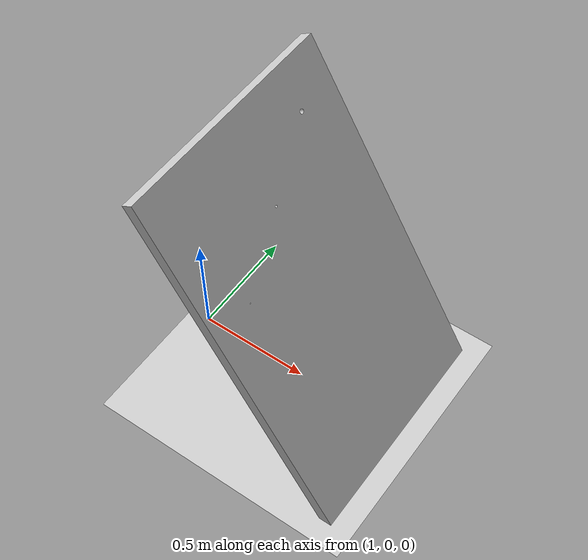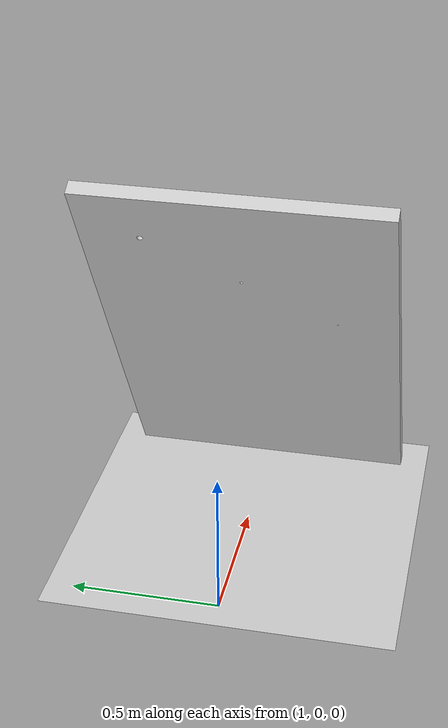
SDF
<?xml version="1.0"?>
<sdf version="1.6">
  <world name="default">
    <!-- physics engine -->
    <physics type="ode">
      <max_step_size>0.001</max_step_size>
      <real_time_factor>1</real_time_factor>
      <real_time_update_rate>1000</real_time_update_rate>
      <magnetic_field>34 0 -36</magnetic_field>
      <gravity>0 0 -9.8</gravity>
    </physics>

    <!-- coordinate -->
    <spherical_coordinates>
      <surface_model>EARTH_WGS84</surface_model>
      <latitude_deg>0</latitude_deg>
      <longitude_deg>0</longitude_deg>
      <elevation>0</elevation>
      <heading_deg>0</heading_deg>
    </spherical_coordinates>

    <!-- A global light source -->
    <scene>
      <sky>
        <clouds>
          <speed>12</speed>
        </clouds>
      </sky>
    </scene>

    <!-- ground plane -->
    <include>
      <uri>model://ground_plane</uri>
    </include>

    <!-- sun -->
    <include>
      <uri>model://sun</uri>
    </include>

    <!-- wall -->
    <include>
      <uri>model://wall_hole</uri>
      <name>wall_1</name>
      <pose>2.0 0.5 0 2.09 0 -1.57</pose>
    </include>

    <!-- light -->
    <light name="additional_light_x" type="directional">
      <diffuse>1.0 1.0 1.0 1</diffuse>
      <specular>0.1 0.1 0.1 1</specular>
      <direction>1.0 0 0</direction>
      <attenuation>
	<range>100</range>
	<constant>0.9</constant>
	<linear>0.01</linear>
	<quadratic>0.001</quadratic>
      </attenuation>
    </light>

    <light name="additional_light_x_2" type="directional">
      <diffuse>1.0 1.0 1.0 1</diffuse>
      <specular>0.1 0.1 0.1 1</specular>
      <direction>1.0 0 0</direction>
      <attenuation>
	<range>100</range>
	<constant>0.9</constant>
	<linear>0.01</linear>
	<quadratic>0.001</quadratic>
      </attenuation>
    </light>

    <light name="additional_light_-x" type="directional">
      <diffuse>1.0 1.0 1.0 1</diffuse>
      <specular>0.1 0.1 0.1 1</specular>
      <direction>-1.0 0 0</direction>
      <attenuation>
	<range>100</range>
	<constant>0.9</constant>
	<linear>0.01</linear>
	<quadratic>0.001</quadratic>
      </attenuation>
    </light>

    <light name="additional_light_y" type="directional">
      <diffuse>1.0 1.0 1.0 1</diffuse>
      <specular>0.1 0.1 0.1 1</specular>
      <direction>0 1.0 0</direction>
      <attenuation>
	<range>100</range>
	<constant>0.9</constant>
	<linear>0.01</linear>
	<quadratic>0.001</quadratic>
      </attenuation>
    </light>

    <light name="additional_light_-y" type="directional">
      <diffuse>1.0 1.0 1.0 1</diffuse>
      <specular>0.1 0.1 0.1 1</specular>
      <direction>0 -1.0 0</direction>
      <attenuation>
	<range>100</range>
	<constant>0.9</constant>
	<linear>0.01</linear>
	<quadratic>0.001</quadratic>
      </attenuation>
    </light>

    <light name="additional_light_-z" type="directional">
      <diffuse>1.0 1.0 1.0 1</diffuse>
      <specular>0.1 0.1 0.1 1</specular>
      <direction>0 0 -1.0</direction>
      <attenuation>
	<range>100</range>
	<constant>0.9</constant>
	<linear>0.01</linear>
	<quadratic>0.001</quadratic>
      </attenuation>
    </light>

  </world>
</sdf>

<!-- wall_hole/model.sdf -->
<sdf version="1.6">
  <model name="wall_hole">
    <static>true</static>
    <link name="wall_link">
      <visual name="wall_visual">
        <geometry>
          <mesh>
            <uri>file:///home/nakata/ros/jsk_aerial_robot_ws/src/jsk_aerial_robot/aerial_robot_simulation/gazebo_model/model/wall_hole/mesh/wall_hole.STL</uri>
            <scale>1 1 1</scale>
          </mesh>
        </geometry>
        <material>
          <ambient>0.8 0.8 0.8 1</ambient>
          <diffuse>0.8 0.8 0.8 1</diffuse>
        </material>
      </visual>

      <collision name="wall_collision">
        <geometry>
          <mesh>
            <uri>file:///home/nakata/ros/jsk_aerial_robot_ws/src/jsk_aerial_robot/aerial_robot_simulation/gazebo_model/model/wall_hole/mesh/wall_hole.STL</uri>
            <scale>1 1 1</scale>
          </mesh>
        </geometry>
      </collision>
    </link>
  </model>
</sdf>
